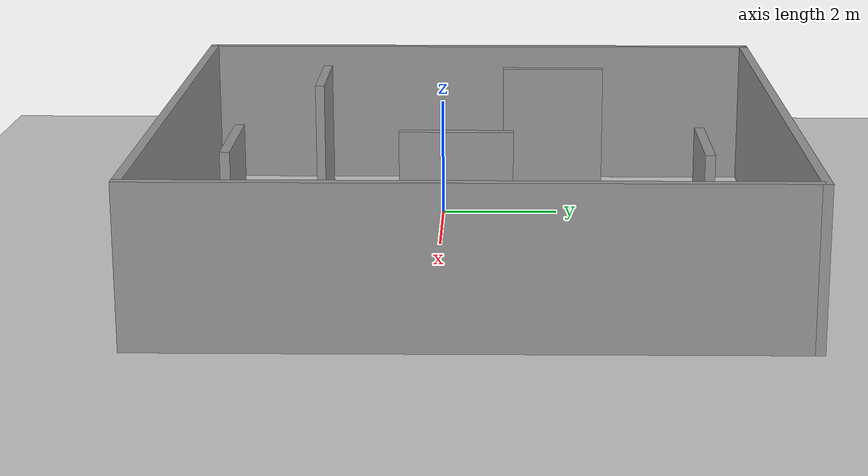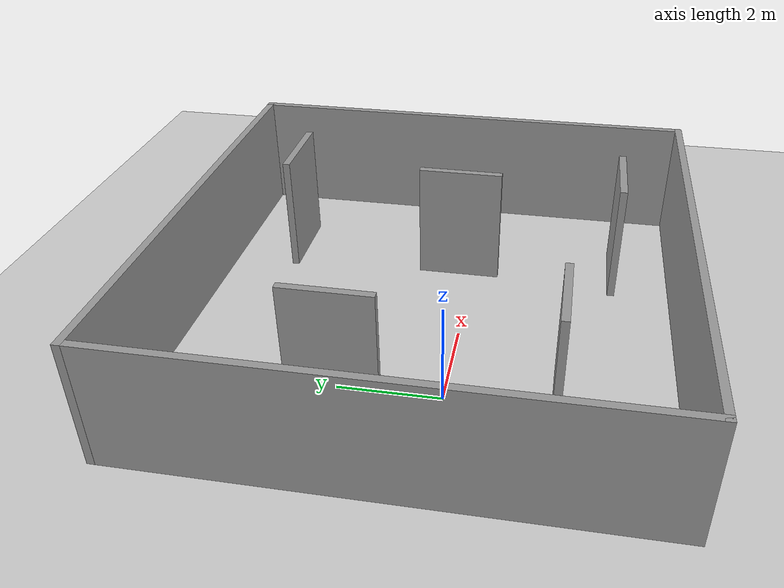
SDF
<sdf version="1.6">
 <world name="default">
  <light name="sun" type="directional">
   <pose>0 0 10 0 -0 0</pose>
   <diffuse>0.8 0.8 0.8 1</diffuse>
   <specular>0.2 0.2 0.2 1</specular>
   <attenuation>
    <range>1000</range>
    <constant>0.9</constant>
    <linear>0.01</linear>
    <quadratic>0.001</quadratic>
   </attenuation>
   <direction>-0.5 0.1 -0.9</direction>
  </light>
  <model name="ground_plane">
   <static>1</static>
   <link name="link">
    <collision name="collision">
     <geometry><plane><normal>0 0 1</normal><size>100 100</size></plane></geometry>
     <surface>
      <contact><collide_bitmask>65535</collide_bitmask></contact>
      <friction><ode><mu>100</mu><mu2>50</mu2></ode></friction>
     </surface>
    </collision>
    <visual name="visual">
     <cast_shadows>0</cast_shadows>
     <geometry><plane><normal>0 0 1</normal><size>100 100</size></plane></geometry>
     <material>
      <script><uri>file://media/materials/scripts/gazebo.material</uri><name>Gazebo/Grey</name></script>
     </material>
    </visual>
   </link>
  </model>
  <gravity>0 0 -9.8</gravity>
  <magnetic_field>6e-06 2.3e-05 -4.2e-05</magnetic_field>
  <atmosphere type="adiabatic"/>
  <physics name="default_physics" default="0" type="ode">
   <max_step_size>0.001</max_step_size>
   <real_time_factor>1</real_time_factor>
   <real_time_update_rate>1000</real_time_update_rate>
  </physics>
  <scene><ambient>0.4 0.4 0.4 1</ambient><background>0.7 0.7 0.7 1</background><shadows>1</shadows></scene>
  <spherical_coordinates>
   <surface_model>EARTH_WGS84</surface_model>
   <latitude_deg>0</latitude_deg>
   <longitude_deg>0</longitude_deg>
   <elevation>0</elevation>
   <heading_deg>0</heading_deg>
  </spherical_coordinates>
  <model name="Test_wall">
   <pose>2.395 0.595 0 0 -0 0</pose>
   <link name="Wall_13">
    <collision name="Wall_13_Collision">
     <geometry><box><size>1.75 0.15 2.5</size></box></geometry>
     <pose>0 0 1.25 0 -0 0</pose>
    </collision>
    <visual name="Wall_13_Visual">
     <pose>0 0 1.25 0 -0 0</pose>
     <geometry><box><size>1.75 0.15 2.5</size></box></geometry>
     <material>
      <script><uri>file://media/materials/scripts/gazebo.material</uri><name>Gazebo/Grey</name></script>
      <ambient>1 1 1 1</ambient>
     </material>
     <meta><layer>0</layer></meta>
    </visual>
    <pose>-2.85928 1.3331 0 0 -0 -1.5708</pose>
   </link>
   <link name="Wall_15">
    <collision name="Wall_15_Collision">
     <geometry><box><size>1.75 0.15 2.5</size></box></geometry>
     <pose>0 0 1.25 0 -0 0</pose>
    </collision>
    <visual name="Wall_15_Visual">
     <pose>0 0 1.25 0 -0 0</pose>
     <geometry><box><size>1.75 0.15 2.5</size></box></geometry>
     <material>
      <script><uri>file://media/materials/scripts/gazebo.material</uri><name>Gazebo/Grey</name></script>
      <ambient>1 1 1 1</ambient>
     </material>
     <meta><layer>0</layer></meta>
    </visual>
    <pose>1.92504 -0.268164 0 0 -0 1.5708</pose>
   </link>
   <link name="Wall_17">
    <collision name="Wall_17_Collision">
     <geometry><box><size>1.75 0.15 2.5</size></box></geometry>
     <pose>0 0 1.25 0 -0 0</pose>
    </collision>
    <visual name="Wall_17_Visual">
     <pose>0 0 1.25 0 -0 0</pose>
     <geometry><box><size>1.75 0.15 2.5</size></box></geometry>
     <material>
      <script><uri>file://media/materials/scripts/gazebo.material</uri><name>Gazebo/Grey</name></script>
      <ambient>1 1 1 1</ambient>
     </material>
     <meta><layer>0</layer></meta>
    </visual>
    <pose>-2.19999 -2.65121 0 0 -0 0</pose>
   </link>
   <link name="Wall_19">
    <collision name="Wall_19_Collision">
     <geometry><box><size>1.75 0.15 2.5</size></box></geometry>
     <pose>0 0 1.25 0 -0 0</pose>
    </collision>
    <visual name="Wall_19_Visual">
     <pose>0 0 1.25 0 -0 0</pose>
     <geometry><box><size>1.75 0.15 2.5</size></box></geometry>
     <material>
      <script><uri>file://media/materials/scripts/gazebo.material</uri><name>Gazebo/Grey</name></script>
      <ambient>1 1 1 1</ambient>
     </material>
     <meta><layer>0</layer></meta>
    </visual>
    <pose>2.51396 3.4699 0 0 -0 0</pose>
   </link>
   <link name="Wall_21">
    <collision name="Wall_21_Collision">
     <geometry><box><size>1.75 0.15 2.5</size></box></geometry>
     <pose>0 0 1.25 0 -0 0</pose>
    </collision>
    <visual name="Wall_21_Visual">
     <pose>0 0 1.25 0 -0 0</pose>
     <geometry><box><size>1.75 0.15 2.5</size></box></geometry>
     <material>
      <script><uri>file://media/materials/scripts/gazebo.material</uri><name>Gazebo/Grey</name></script>
      <ambient>1 1 1 1</ambient>
     </material>
     <meta><layer>0</layer></meta>
    </visual>
    <pose>2.40843 -3.63621 0 0 -0 0</pose>
   </link>
   <link name="Wall_6">
    <collision name="Wall_6_Collision">
     <geometry><box><size>10 0.15 2.5</size></box></geometry>
     <pose>0 0 1.25 0 -0 0</pose>
    </collision>
    <visual name="Wall_6_Visual">
     <pose>0 0 1.25 0 -0 0</pose>
     <geometry><box><size>10 0.15 2.5</size></box></geometry>
     <material>
      <script><uri>file://media/materials/scripts/gazebo.material</uri><name>Gazebo/Grey</name></script>
      <ambient>1 1 1 1</ambient>
     </material>
     <meta><layer>0</layer></meta>
    </visual>
    <pose>-0 -4.925 0 0 -0 0</pose>
   </link>
   <link name="Wall_7">
    <collision name="Wall_7_Collision">
     <geometry><box><size>10 0.15 2.5</size></box></geometry>
     <pose>0 0 1.25 0 -0 0</pose>
    </collision>
    <visual name="Wall_7_Visual">
     <pose>0 0 1.25 0 -0 0</pose>
     <geometry><box><size>10 0.15 2.5</size></box></geometry>
     <material>
      <script><uri>file://media/materials/scripts/gazebo.material</uri><name>Gazebo/Grey</name></script>
      <ambient>1 1 1 1</ambient>
     </material>
     <meta><layer>0</layer></meta>
    </visual>
    <pose>4.925 0 0 0 -0 1.5708</pose>
   </link>
   <link name="Wall_8">
    <collision name="Wall_8_Collision">
     <geometry><box><size>10 0.15 2.5</size></box></geometry>
     <pose>0 0 1.25 0 -0 0</pose>
    </collision>
    <visual name="Wall_8_Visual">
     <pose>0 0 1.25 0 -0 0</pose>
     <geometry><box><size>10 0.15 2.5</size></box></geometry>
     <material>
      <script><uri>file://media/materials/scripts/gazebo.material</uri><name>Gazebo/Grey</name></script>
      <ambient>1 1 1 1</ambient>
     </material>
     <meta><layer>0</layer></meta>
    </visual>
    <pose>-0 4.925 0 0 -0 3.14159</pose>
   </link>
   <link name="Wall_9">
    <collision name="Wall_9_Collision">
     <geometry><box><size>10 0.15 2.5</size></box></geometry>
     <pose>0 0 1.25 0 -0 0</pose>
    </collision>
    <visual name="Wall_9_Visual">
     <pose>0 0 1.25 0 -0 0</pose>
     <geometry><box><size>10 0.15 2.5</size></box></geometry>
     <material>
      <script><uri>file://media/materials/scripts/gazebo.material</uri><name>Gazebo/Grey</name></script>
      <ambient>1 1 1 1</ambient>
     </material>
     <meta><layer>0</layer></meta>
    </visual>
    <pose>-4.925 0 0 0 -0 -1.5708</pose>
   </link>
   <static>1</static>
  </model>
 </world>
</sdf>
